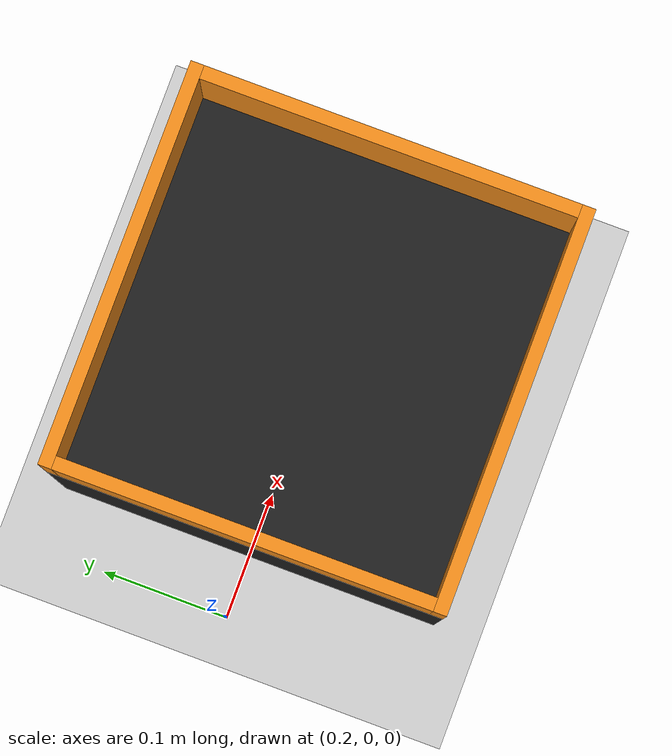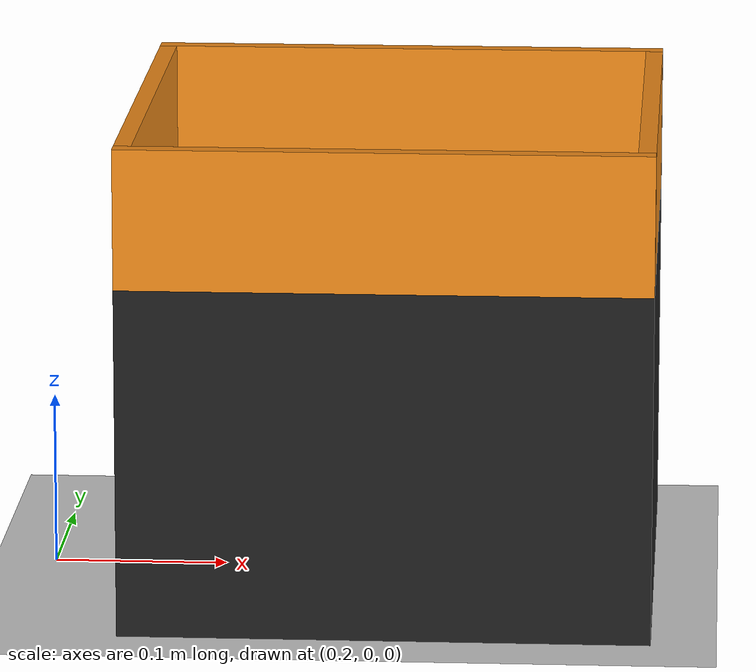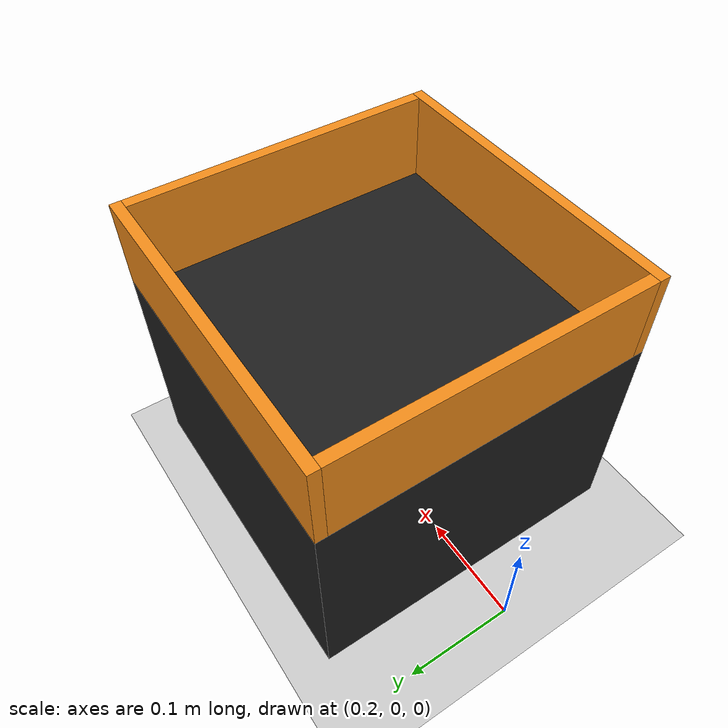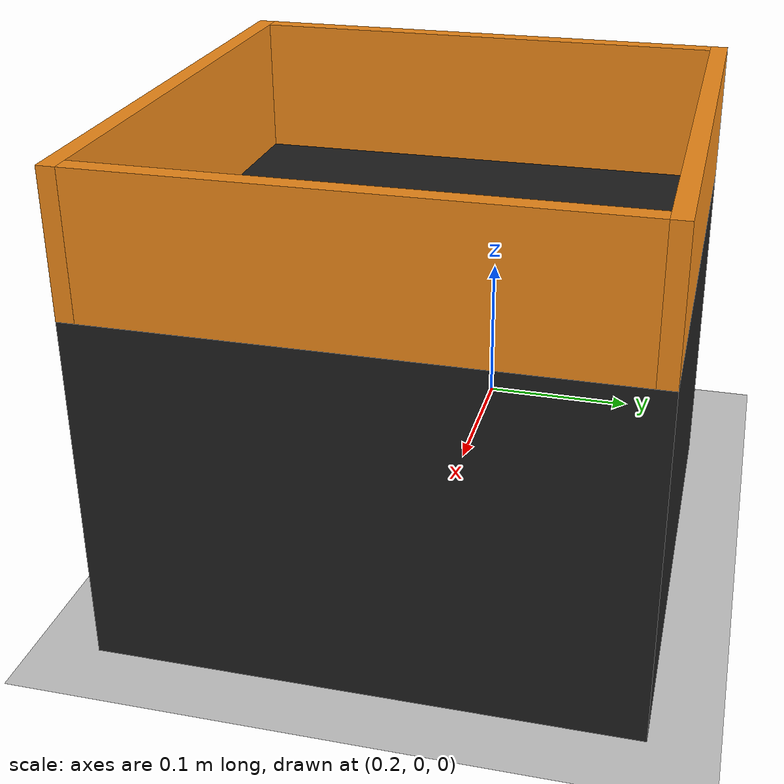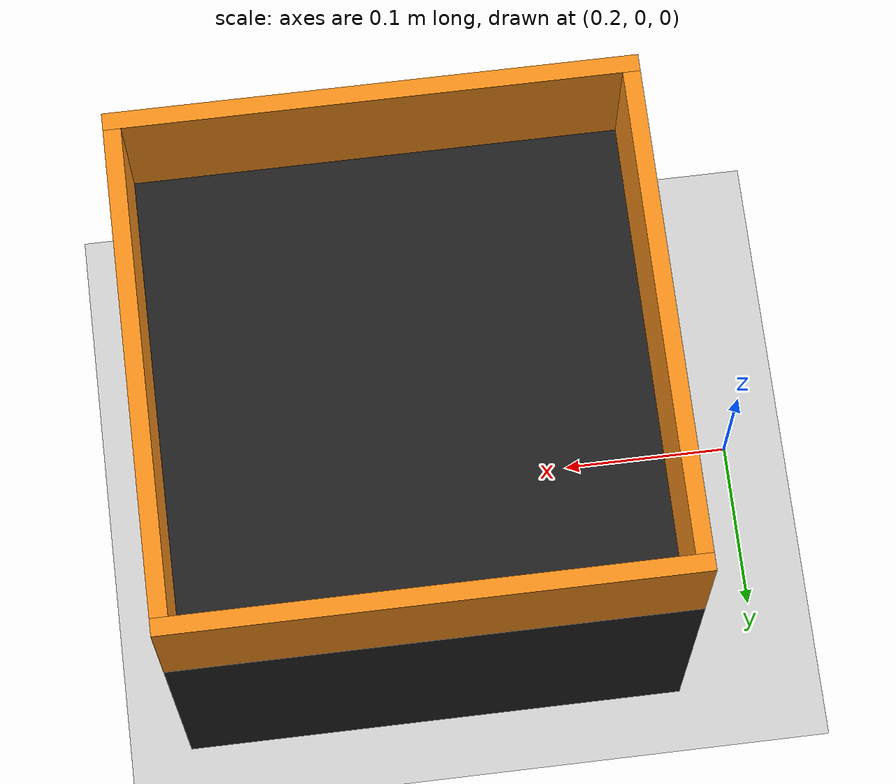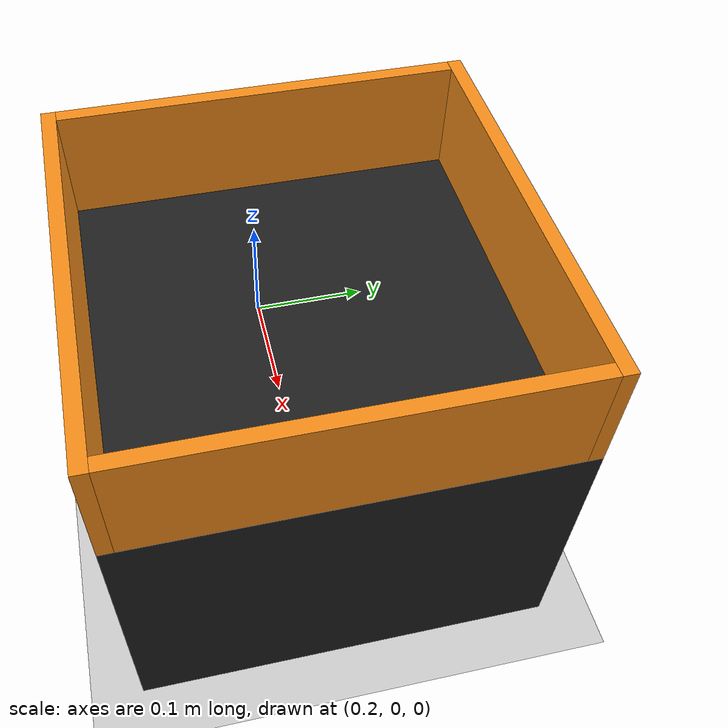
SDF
<sdf version="1.4">
 <world name="empty">
  <include><uri>model://sun</uri></include>
  <include><uri>model://ground_plane</uri></include>
  <physics type="ode">
   <max_step_size>0.001</max_step_size>
   <real_time_factor>1</real_time_factor>
   <real_time_update_rate>1000</real_time_update_rate>
   <gravity>0 0 -9.81</gravity>
  </physics>
  <model name="table_box_model">
   <static>true</static>
   <pose>0.40 0.0 0.1 0 -0 1.5707963265</pose>
   <link name="table_box_link">
    <inertial>
     <mass>1</mass>
     <inertia>
      <ixx>0.166667</ixx>
      <ixy>0</ixy>
      <ixz>0</ixz>
      <iyy>0.166667</iyy>
      <iyz>0</iyz>
      <izz>0.166667</izz>
     </inertia>
    </inertial>
    <collision name="collision">
     <geometry><box><size>0.30 0.30 0.2</size></box></geometry>
     <surface><friction><ode><mu>0.6</mu><mu2>0.6</mu2></ode></friction></surface>
    </collision>
    <visual name="visual">
     <geometry><box><size>0.30 0.30 0.2</size></box></geometry>
     <material>
      <script><name>Gazebo/Black</name><uri>file://media/materials/scripts/gazebo.material</uri></script>
     </material>
    </visual>
   </link>
  </model>
  <model name="box_wall1_model">
   <static>true</static>
   <pose>0.40 0.145 0.24 0 -0 1.5707963265</pose>
   <link name="box_wall1_link">
    <inertial>
     <mass>1</mass>
     <inertia>
      <ixx>0.166667</ixx>
      <ixy>0</ixy>
      <ixz>0</ixz>
      <iyy>0.166667</iyy>
      <iyz>0</iyz>
      <izz>0.166667</izz>
     </inertia>
    </inertial>
    <collision name="collision">
     <geometry><box><size>0.01 0.30 0.08</size></box></geometry>
     <surface><friction><ode><mu>0.6</mu><mu2>0.6</mu2></ode></friction></surface>
    </collision>
    <visual name="visual">
     <geometry><box><size>0.01 0.30 0.08</size></box></geometry>
     <material>
      <script><name>Gazebo/Orange</name><uri>file://media/materials/scripts/gazebo.material</uri></script>
     </material>
    </visual>
   </link>
  </model>
  <model name="box_wall2_model">
   <static>true</static>
   <pose>0.40 -0.145 0.24 0 -0 1.5707963265</pose>
   <link name="box_wall2_link">
    <inertial>
     <mass>1</mass>
     <inertia>
      <ixx>0.166667</ixx>
      <ixy>0</ixy>
      <ixz>0</ixz>
      <iyy>0.166667</iyy>
      <iyz>0</iyz>
      <izz>0.166667</izz>
     </inertia>
    </inertial>
    <collision name="collision">
     <geometry><box><size>0.01 0.30 0.08</size></box></geometry>
     <surface><friction><ode><mu>0.6</mu><mu2>0.6</mu2></ode></friction></surface>
    </collision>
    <visual name="visual">
     <geometry><box><size>0.01 0.30 0.08</size></box></geometry>
     <material>
      <script><name>Gazebo/Orange</name><uri>file://media/materials/scripts/gazebo.material</uri></script>
     </material>
    </visual>
   </link>
  </model>
  <model name="box_wall3_model">
   <static>true</static>
   <pose>0.255 0.0 0.24 0 -0 1.5707963265</pose>
   <link name="box_wall3_link">
    <inertial>
     <mass>1</mass>
     <inertia>
      <ixx>0.166667</ixx>
      <ixy>0</ixy>
      <ixz>0</ixz>
      <iyy>0.166667</iyy>
      <iyz>0</iyz>
      <izz>0.166667</izz>
     </inertia>
    </inertial>
    <collision name="collision">
     <geometry><box><size>0.28 0.01 0.08</size></box></geometry>
     <surface><friction><ode><mu>0.6</mu><mu2>0.6</mu2></ode></friction></surface>
    </collision>
    <visual name="visual">
     <geometry><box><size>0.28 0.01 0.08</size></box></geometry>
     <material>
      <script><name>Gazebo/Orange</name><uri>file://media/materials/scripts/gazebo.material</uri></script>
     </material>
    </visual>
   </link>
  </model>
  <model name="box_wall4_model">
   <static>true</static>
   <pose>0.545 0.0 0.24 0 -0 1.5707963265</pose>
   <link name="box_wall4_link">
    <inertial>
     <mass>1</mass>
     <inertia>
      <ixx>0.166667</ixx>
      <ixy>0</ixy>
      <ixz>0</ixz>
      <iyy>0.166667</iyy>
      <iyz>0</iyz>
      <izz>0.166667</izz>
     </inertia>
    </inertial>
    <collision name="collision">
     <geometry><box><size>0.28 0.01 0.08</size></box></geometry>
     <surface><friction><ode><mu>0.6</mu><mu2>0.6</mu2></ode></friction></surface>
    </collision>
    <visual name="visual">
     <geometry><box><size>0.28 0.01 0.08</size></box></geometry>
     <material>
      <script><name>Gazebo/Orange</name><uri>file://media/materials/scripts/gazebo.material</uri></script>
     </material>
    </visual>
   </link>
  </model>
 </world>
</sdf>
